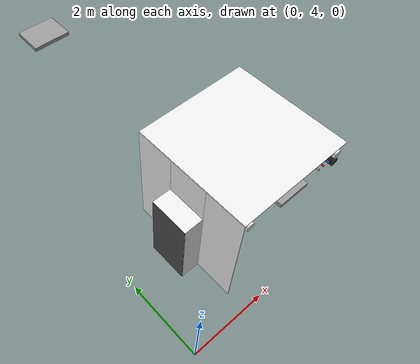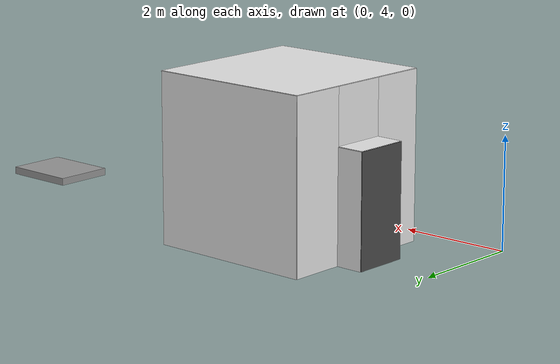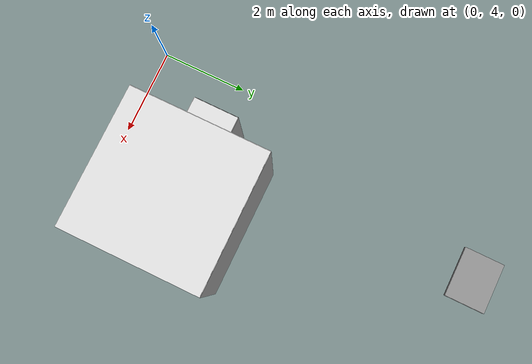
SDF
<sdf version="1.6">
 <world name="default">
  <model name="wall_front_1_2_0_2">
   <static>1</static>
   <pose>3.0 7.5 1.5 0.0 0.0 0.0</pose>
   <link name="link">
    <collision name="collision"><geometry><box><size>3.0 0.02 3.0</size></box></geometry></collision>
    <visual name="visual">
     <material>
      <script><name>Gazebo/White</name><uri>file://media/materials/scripts/gazebo.material</uri></script>
     </material>
     <geometry><box><size>3.0 0.02 3.0</size></box></geometry>
    </visual>
   </link>
  </model>
  <model name="wall_top_1_2_0_2">
   <static>1</static>
   <pose>3.0 6.0 3.0 1.57 0.0 0.0</pose>
   <link name="link">
    <collision name="collision"><geometry><box><size>3.0 0.02 3.0</size></box></geometry></collision>
    <visual name="visual">
     <material>
      <script><name>Gazebo/White</name><uri>file://media/materials/scripts/gazebo.material</uri></script>
     </material>
     <geometry><box><size>3.0 0.02 3.0</size></box></geometry>
    </visual>
   </link>
  </model>
  <model name="ceiling_1_1_2_0_2">
   <pose>3.0 5.0 2.55 0.0 0.0 0.0</pose>
   <link name="link_1">
    <visual name="visual">
     <geometry><box><size>0.8 1 0.1</size></box></geometry>
     <material>
      <script><uri>file://media/materials/scripts/gazebo.material</uri><name>Gazebo/Grey</name></script>
     </material>
    </visual>
    <collision name="collision"><geometry><box><size>0.8 1 0.1</size></box></geometry></collision>
   </link>
   <static>1</static>
  </model>
  <model name="white_pipe_left_1_2_0_2">
   <static>1</static>
   <pose>3.0 6.0 2.76 0.0 0.0 0.0</pose>
   <link name="link_0">
    <visual name="visual">
     <pose>-1.3 0 0 1.57 0 0</pose>
     <geometry><cylinder><radius>0.1</radius><length>3.0</length></cylinder></geometry>
     <material>
      <script><uri>file://media/materials/scripts/gazebo.material</uri><name>Gazebo/White</name></script>
     </material>
    </visual>
    <collision name="collision">
     <pose>-1.3 0 0 1.57 0 0</pose>
     <geometry><cylinder><radius>0.1</radius><length>3.0</length></cylinder></geometry>
    </collision>
   </link>
  </model>
  <model name="white_pipe_right_1_2_0_2">
   <static>1</static>
   <pose>3.0 6.0 2.76 0.0 0.0 0.0</pose>
   <link name="link_0">
    <visual name="visual">
     <pose>1.3 0 0 1.57 0 0</pose>
     <geometry><cylinder><radius>0.1</radius><length>3.0</length></cylinder></geometry>
     <material>
      <script><uri>file://media/materials/scripts/gazebo.material</uri><name>Gazebo/White</name></script>
     </material>
    </visual>
    <collision name="collision">
     <pose>1.3 0 0 1.57 0 0</pose>
     <geometry><cylinder><radius>0.1</radius><length>3.0</length></cylinder></geometry>
    </collision>
   </link>
  </model>
  <model name="black_pipe_right_1_2_0_2">
   <static>1</static>
   <pose>3.0 6.0 2.76 0.0 0.0 0.0</pose>
   <link name="link_0">
    <visual name="visual">
     <pose>1.3 0 -0.25 1.57 0 0</pose>
     <geometry><cylinder><radius>0.1</radius><length>3.0</length></cylinder></geometry>
     <material>
      <script><uri>file://media/materials/scripts/gazebo.material</uri><name>Gazebo/Black</name></script>
     </material>
    </visual>
    <collision name="collision">
     <pose>1.3 0 -0.25 1.57 0 0</pose>
     <geometry><cylinder><radius>0.1</radius><length>3.0</length></cylinder></geometry>
    </collision>
   </link>
  </model>
  <model name="grey_pipe_right_1_2_0_2">
   <static>1</static>
   <pose>3.0 6.0 2.76 0.0 0.0 0.0</pose>
   <link name="link_0">
    <visual name="visual">
     <pose>0.7 0 0 1.57 0 0</pose>
     <geometry><cylinder><radius>0.02</radius><length>3.0</length></cylinder></geometry>
     <material>
      <script><uri>file://media/materials/scripts/gazebo.material</uri><name>Gazebo/Grey</name></script>
     </material>
    </visual>
    <collision name="collision">
     <pose>0.7 0 0 1.57 0 0</pose>
     <geometry><cylinder><radius>0.02</radius><length>3.0</length></cylinder></geometry>
    </collision>
   </link>
  </model>
  <model name="red_pipe_right_1_2_0_2">
   <static>1</static>
   <pose>3.0 6.0 2.76 0.0 0.0 0.0</pose>
   <link name="link_0">
    <visual name="visual">
     <pose>0.85 0 0 1.57 0 0</pose>
     <geometry><cylinder><radius>0.02</radius><length>3.0</length></cylinder></geometry>
     <material>
      <script><uri>file://media/materials/scripts/gazebo.material</uri><name>Gazebo/Red</name></script>
     </material>
    </visual>
    <collision name="collision">
     <pose>0.85 0 0 1.57 0 0</pose>
     <geometry><cylinder><radius>0.02</radius><length>3.0</length></cylinder></geometry>
    </collision>
   </link>
  </model>
  <model name="blue_pipe_right_1_2_0_2">
   <static>1</static>
   <pose>3.0 6.0 2.76 0.0 0.0 0.0</pose>
   <link name="link_0">
    <visual name="visual">
     <pose>1 0 0 1.57 0 0</pose>
     <geometry><cylinder><radius>0.02</radius><length>3.0</length></cylinder></geometry>
     <material>
      <script><uri>file://media/materials/scripts/gazebo.material</uri><name>Gazebo/Blue</name></script>
     </material>
    </visual>
    <collision name="collision">
     <pose>1 0 0 1.57 0 0</pose>
     <geometry><cylinder><radius>0.02</radius><length>3.0</length></cylinder></geometry>
    </collision>
   </link>
  </model>
  <model name="white_pipe_left_1_1_2_0_2">
   <static>1</static>
   <pose>3.0 6.0 2.76 0.0 0.0 1.57</pose>
   <link name="link_0">
    <visual name="visual">
     <pose>-1.3 0 0 1.57 0 0</pose>
     <geometry><cylinder><radius>0.1</radius><length>3.0</length></cylinder></geometry>
     <material>
      <script><uri>file://media/materials/scripts/gazebo.material</uri><name>Gazebo/White</name></script>
     </material>
    </visual>
    <collision name="collision">
     <pose>-1.3 0 0 1.57 0 0</pose>
     <geometry><cylinder><radius>0.1</radius><length>3.0</length></cylinder></geometry>
    </collision>
   </link>
  </model>
  <model name="white_pipe_right_1_1_2_0_2">
   <static>1</static>
   <pose>3.0 6.0 2.76 0.0 0.0 1.57</pose>
   <link name="link_0">
    <visual name="visual">
     <pose>1.3 0 0 1.57 0 0</pose>
     <geometry><cylinder><radius>0.1</radius><length>3.0</length></cylinder></geometry>
     <material>
      <script><uri>file://media/materials/scripts/gazebo.material</uri><name>Gazebo/White</name></script>
     </material>
    </visual>
    <collision name="collision">
     <pose>1.3 0 0 1.57 0 0</pose>
     <geometry><cylinder><radius>0.1</radius><length>3.0</length></cylinder></geometry>
    </collision>
   </link>
  </model>
  <model name="black_pipe_right_1_1_2_0_2">
   <static>1</static>
   <pose>3.0 6.0 2.76 0.0 0.0 1.57</pose>
   <link name="link_0">
    <visual name="visual">
     <pose>1.3 0 -0.25 1.57 0 0</pose>
     <geometry><cylinder><radius>0.1</radius><length>3.0</length></cylinder></geometry>
     <material>
      <script><uri>file://media/materials/scripts/gazebo.material</uri><name>Gazebo/Black</name></script>
     </material>
    </visual>
    <collision name="collision">
     <pose>1.3 0 -0.25 1.57 0 0</pose>
     <geometry><cylinder><radius>0.1</radius><length>3.0</length></cylinder></geometry>
    </collision>
   </link>
  </model>
  <model name="wall_left_front_left_1_2_0_2">
   <static>1</static>
   <pose>1.5 7.0 1.5 0.0 0.0 1.57</pose>
   <link name="link">
    <collision name="collision"><geometry><box><size>1.0 0.02 3.0</size></box></geometry></collision>
    <visual name="visual">
     <material>
      <script><name>Gazebo/White</name><uri>file://media/materials/scripts/gazebo.material</uri></script>
     </material>
     <geometry><box><size>1.0 0.02 3.0</size></box></geometry>
    </visual>
   </link>
  </model>
  <model name="wall_left_front_right_1_2_0_2">
   <static>1</static>
   <pose>1.5 5.0 1.5 0.0 0.0 1.57</pose>
   <link name="link">
    <collision name="collision"><geometry><box><size>1.0 0.02 3.0</size></box></geometry></collision>
    <visual name="visual">
     <material>
      <script><name>Gazebo/White</name><uri>file://media/materials/scripts/gazebo.material</uri></script>
     </material>
     <geometry><box><size>1.0 0.02 3.0</size></box></geometry>
    </visual>
   </link>
  </model>
  <model name="wall_left_front_up_1_2_0_2">
   <static>1</static>
   <pose>1.5 6.0 2.5 0.0 0.0 1.57</pose>
   <link name="link">
    <collision name="collision"><geometry><box><size>1.0 0.02 1.0</size></box></geometry></collision>
    <visual name="visual">
     <material>
      <script><name>Gazebo/White</name><uri>file://media/materials/scripts/gazebo.material</uri></script>
     </material>
     <geometry><box><size>1.0 0.02 1.0</size></box></geometry>
    </visual>
   </link>
  </model>
  <model name="wall_left_inside_back_1_2_0_2">
   <static>1</static>
   <pose>1.0 6.0 1.0 0.0 0.0 1.57</pose>
   <link name="link">
    <collision name="collision"><geometry><box><size>1 0.02 2</size></box></geometry></collision>
    <visual name="visual">
     <material>
      <script><name>Gazebo/DarkGrey</name><uri>file://media/materials/scripts/gazebo.material</uri></script>
     </material>
     <geometry><box><size>1 0.02 2</size></box></geometry>
    </visual>
   </link>
  </model>
  <model name="wall_left_inside_left_1_2_0_2">
   <static>1</static>
   <pose>1.25 6.5 1.0 0.0 0.0 0.0</pose>
   <link name="link">
    <collision name="collision"><geometry><box><size>0.5 0.02 2</size></box></geometry></collision>
    <visual name="visual">
     <material>
      <script><name>Gazebo/White</name><uri>file://media/materials/scripts/gazebo.material</uri></script>
     </material>
     <geometry><box><size>0.5 0.02 2</size></box></geometry>
    </visual>
   </link>
  </model>
  <model name="wall_left_inside_right_1_2_0_2">
   <static>1</static>
   <pose>1.25 5.5 1.0 0.0 0.0 0.0</pose>
   <link name="link">
    <collision name="collision"><geometry><box><size>0.5 0.02 2</size></box></geometry></collision>
    <visual name="visual">
     <material>
      <script><name>Gazebo/White</name><uri>file://media/materials/scripts/gazebo.material</uri></script>
     </material>
     <geometry><box><size>0.5 0.02 2</size></box></geometry>
    </visual>
   </link>
  </model>
  <model name="wall_left_inside_top_1_2_0_2">
   <static>1</static>
   <pose>1.25 6.0 2.0 1.57 0.0 1.57</pose>
   <link name="link">
    <collision name="collision"><geometry><box><size>1 0.02 0.5</size></box></geometry></collision>
    <visual name="visual">
     <material>
      <script><name>Gazebo/White</name><uri>file://media/materials/scripts/gazebo.material</uri></script>
     </material>
     <geometry><box><size>1 0.02 0.5</size></box></geometry>
    </visual>
   </link>
  </model>
  <model name="ceiling_1_1_4_2_4">
   <pose>2.0 12.0 2.55 0.0 0.0 1.57</pose>
   <link name="link_1">
    <visual name="visual">
     <geometry><box><size>0.8 1 0.1</size></box></geometry>
     <material>
      <script><uri>file://media/materials/scripts/gazebo.material</uri><name>Gazebo/Grey</name></script>
     </material>
    </visual>
    <collision name="collision"><geometry><box><size>0.8 1 0.1</size></box></geometry></collision>
   </link>
   <static>1</static>
  </model>
 </world>
</sdf>
